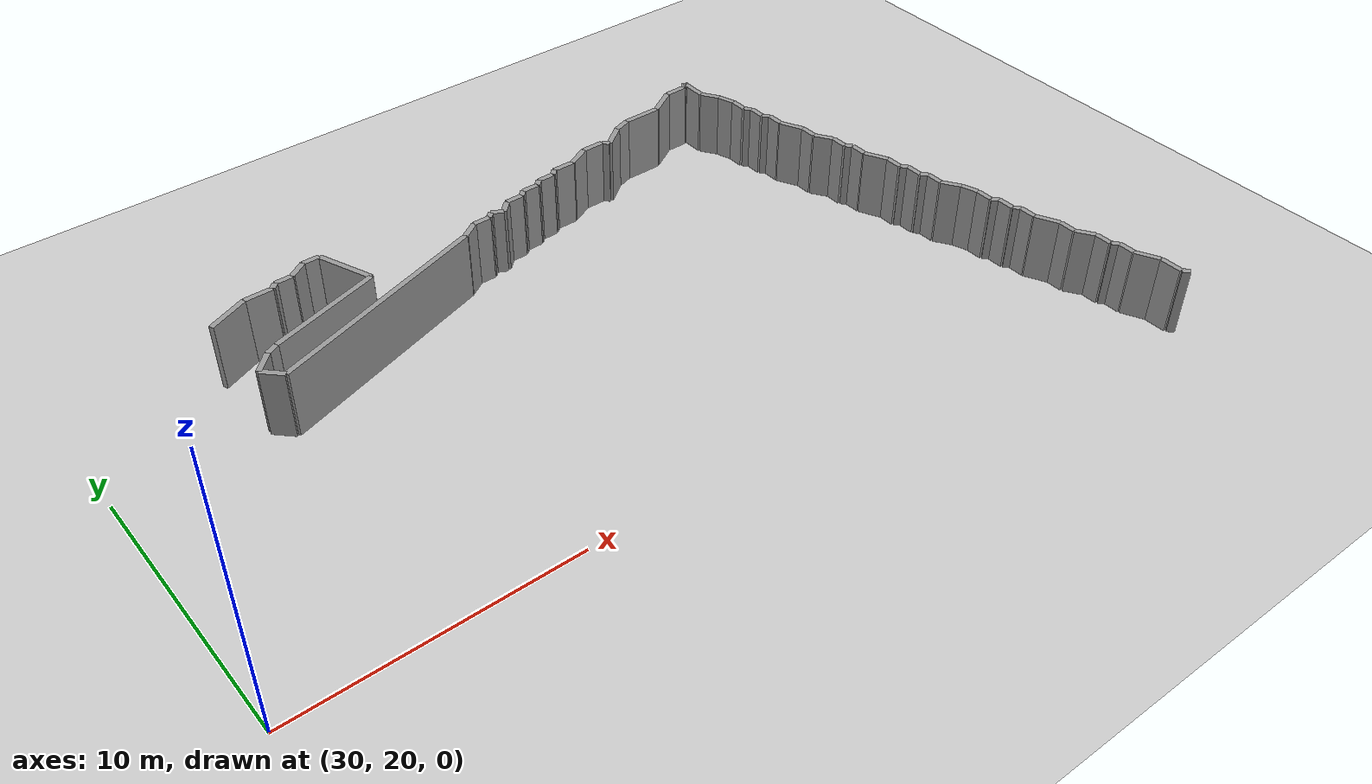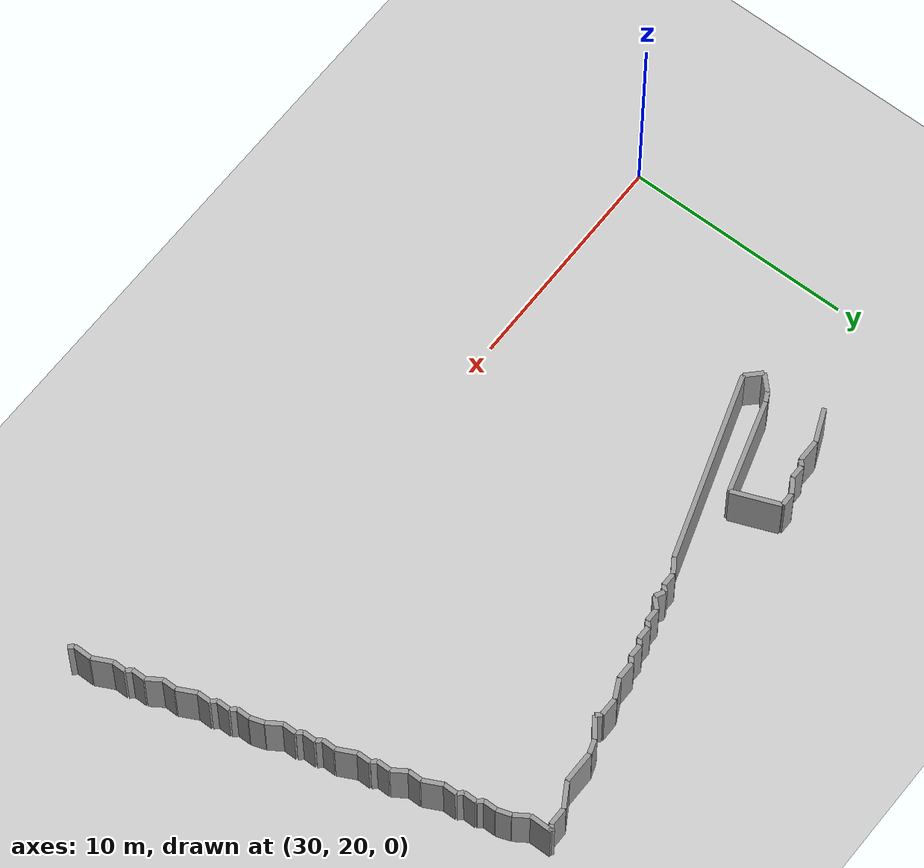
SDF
<sdf version="1.4">
 <world name="1_wall">
  <model name="ground_plane">
   <static>1</static>
   <link name="link">
    <collision name="collision">
     <geometry><plane><normal>0 0 1</normal><size>1000 1000</size></plane></geometry>
     <surface><friction><ode><mu>100</mu><mu2>50</mu2></ode></friction></surface>
    </collision>
    <visual name="visual">
     <cast_shadows>0</cast_shadows>
     <geometry><plane><normal>0 0 1</normal><size>10000 10000</size></plane></geometry>
     <material>
      <script><uri>file://media/materials/scripts/gazebo.material</uri><name>Gazebo/Grey</name></script>
     </material>
    </visual>
    <velocity_decay><linear>0</linear><angular>0</angular></velocity_decay>
   </link>
  </model>
  <model name="Wall_345">
   <static>1</static>
   <link name="Wall_345">
    <collision name="Wall_Collision_345">
     <geometry><box><size>1.52315462117 0.2 2.5</size></box></geometry>
     <pose>0 0 1.25 0 -0 0</pose>
    </collision>
    <visual name="Wall_Visual_345">
     <pose>0 0 1.25 0 -0 0</pose>
     <geometry><box><size>1.52315462117 0.2 2.5</size></box></geometry>
     <material>
      <script><uri>file://media/materials/scripts/gazebo.material</uri><name>Gazebo/Grey</name></script>
     </material>
    </visual>
    <velocity_decay><linear>0</linear><angular>0</angular></velocity_decay>
    <pose>35.7 33.1 0 0 0 0.404891786285</pose>
   </link>
  </model>
  <model name="Wall_346">
   <static>1</static>
   <link name="Wall_346">
    <collision name="Wall_Collision_346">
     <geometry><box><size>1.0 0.2 2.5</size></box></geometry>
     <pose>0 0 1.25 0 -0 0</pose>
    </collision>
    <visual name="Wall_Visual_346">
     <pose>0 0 1.25 0 -0 0</pose>
     <geometry><box><size>1.0 0.2 2.5</size></box></geometry>
     <material>
      <script><uri>file://media/materials/scripts/gazebo.material</uri><name>Gazebo/Grey</name></script>
     </material>
    </visual>
    <velocity_decay><linear>0</linear><angular>0</angular></velocity_decay>
    <pose>36.9 33.4 0 0 0 0.0</pose>
   </link>
  </model>
  <model name="Wall_347">
   <static>1</static>
   <link name="Wall_347">
    <collision name="Wall_Collision_347">
     <geometry><box><size>0.282842712475 0.2 2.5</size></box></geometry>
     <pose>0 0 1.25 0 -0 0</pose>
    </collision>
    <visual name="Wall_Visual_347">
     <pose>0 0 1.25 0 -0 0</pose>
     <geometry><box><size>0.282842712475 0.2 2.5</size></box></geometry>
     <material>
      <script><uri>file://media/materials/scripts/gazebo.material</uri><name>Gazebo/Grey</name></script>
     </material>
    </visual>
    <velocity_decay><linear>0</linear><angular>0</angular></velocity_decay>
    <pose>37.5 33.5 0 0 0 0.785398163397</pose>
   </link>
  </model>
  <model name="Wall_348">
   <static>1</static>
   <link name="Wall_348">
    <collision name="Wall_Collision_348">
     <geometry><box><size>0.6 0.2 2.5</size></box></geometry>
     <pose>0 0 1.25 0 -0 0</pose>
    </collision>
    <visual name="Wall_Visual_348">
     <pose>0 0 1.25 0 -0 0</pose>
     <geometry><box><size>0.6 0.2 2.5</size></box></geometry>
     <material>
      <script><uri>file://media/materials/scripts/gazebo.material</uri><name>Gazebo/Grey</name></script>
     </material>
    </visual>
    <velocity_decay><linear>0</linear><angular>0</angular></velocity_decay>
    <pose>37.9 33.6 0 0 0 0.0</pose>
   </link>
  </model>
  <model name="Wall_349">
   <static>1</static>
   <link name="Wall_349">
    <collision name="Wall_Collision_349">
     <geometry><box><size>0.721110255093 0.2 2.5</size></box></geometry>
     <pose>0 0 1.25 0 -0 0</pose>
    </collision>
    <visual name="Wall_Visual_349">
     <pose>0 0 1.25 0 -0 0</pose>
     <geometry><box><size>0.721110255093 0.2 2.5</size></box></geometry>
     <material>
      <script><uri>file://media/materials/scripts/gazebo.material</uri><name>Gazebo/Grey</name></script>
     </material>
    </visual>
    <velocity_decay><linear>0</linear><angular>0</angular></velocity_decay>
    <pose>38.5 33.8 0 0 0 0.588002603548</pose>
   </link>
  </model>
  <model name="Wall_350">
   <static>1</static>
   <link name="Wall_350">
    <collision name="Wall_Collision_350">
     <geometry><box><size>0.6 0.2 2.5</size></box></geometry>
     <pose>0 0 1.25 0 -0 0</pose>
    </collision>
    <visual name="Wall_Visual_350">
     <pose>0 0 1.25 0 -0 0</pose>
     <geometry><box><size>0.6 0.2 2.5</size></box></geometry>
     <material>
      <script><uri>file://media/materials/scripts/gazebo.material</uri><name>Gazebo/Grey</name></script>
     </material>
    </visual>
    <velocity_decay><linear>0</linear><angular>0</angular></velocity_decay>
    <pose>39.1 34.0 0 0 0 0.0</pose>
   </link>
  </model>
  <model name="Wall_351">
   <static>1</static>
   <link name="Wall_351">
    <collision name="Wall_Collision_351">
     <geometry><box><size>2.15406592285 0.2 2.5</size></box></geometry>
     <pose>0 0 1.25 0 -0 0</pose>
    </collision>
    <visual name="Wall_Visual_351">
     <pose>0 0 1.25 0 -0 0</pose>
     <geometry><box><size>2.15406592285 0.2 2.5</size></box></geometry>
     <material>
      <script><uri>file://media/materials/scripts/gazebo.material</uri><name>Gazebo/Grey</name></script>
     </material>
    </visual>
    <velocity_decay><linear>0</linear><angular>0</angular></velocity_decay>
    <pose>39.8 33.0 0 0 0 -1.19028994968</pose>
   </link>
  </model>
  <model name="Wall_352">
   <static>1</static>
   <link name="Wall_352">
    <collision name="Wall_Collision_352">
     <geometry><box><size>4.17612260356 0.2 2.5</size></box></geometry>
     <pose>0 0 1.25 0 -0 0</pose>
    </collision>
    <visual name="Wall_Visual_352">
     <pose>0 0 1.25 0 -0 0</pose>
     <geometry><box><size>4.17612260356 0.2 2.5</size></box></geometry>
     <material>
      <script><uri>file://media/materials/scripts/gazebo.material</uri><name>Gazebo/Grey</name></script>
     </material>
    </visual>
    <velocity_decay><linear>0</linear><angular>0</angular></velocity_decay>
    <pose>38.2 31.4 0 0 0 -2.85013585911</pose>
   </link>
  </model>
  <model name="Wall_353">
   <static>1</static>
   <link name="Wall_353">
    <collision name="Wall_Collision_353">
     <geometry><box><size>0.4472135955 0.2 2.5</size></box></geometry>
     <pose>0 0 1.25 0 -0 0</pose>
    </collision>
    <visual name="Wall_Visual_353">
     <pose>0 0 1.25 0 -0 0</pose>
     <geometry><box><size>0.4472135955 0.2 2.5</size></box></geometry>
     <material>
      <script><uri>file://media/materials/scripts/gazebo.material</uri><name>Gazebo/Grey</name></script>
     </material>
    </visual>
    <velocity_decay><linear>0</linear><angular>0</angular></velocity_decay>
    <pose>36.0 30.7 0 0 0 -2.67794504459</pose>
   </link>
  </model>
  <model name="Wall_354">
   <static>1</static>
   <link name="Wall_354">
    <collision name="Wall_Collision_354">
     <geometry><box><size>0.848528137424 0.2 2.5</size></box></geometry>
     <pose>0 0 1.25 0 -0 0</pose>
    </collision>
    <visual name="Wall_Visual_354">
     <pose>0 0 1.25 0 -0 0</pose>
     <geometry><box><size>0.848528137424 0.2 2.5</size></box></geometry>
     <material>
      <script><uri>file://media/materials/scripts/gazebo.material</uri><name>Gazebo/Grey</name></script>
     </material>
    </visual>
    <velocity_decay><linear>0</linear><angular>0</angular></velocity_decay>
    <pose>35.5 30.3 0 0 0 -2.35619449019</pose>
   </link>
  </model>
  <model name="Wall_355">
   <static>1</static>
   <link name="Wall_355">
    <collision name="Wall_Collision_355">
     <geometry><box><size>0.848528137424 0.2 2.5</size></box></geometry>
     <pose>0 0 1.25 0 -0 0</pose>
    </collision>
    <visual name="Wall_Visual_355">
     <pose>0 0 1.25 0 -0 0</pose>
     <geometry><box><size>0.848528137424 0.2 2.5</size></box></geometry>
     <material>
      <script><uri>file://media/materials/scripts/gazebo.material</uri><name>Gazebo/Grey</name></script>
     </material>
    </visual>
    <velocity_decay><linear>0</linear><angular>0</angular></velocity_decay>
    <pose>35.5 29.7 0 0 0 -0.785398163397</pose>
   </link>
  </model>
  <model name="Wall_356">
   <static>1</static>
   <link name="Wall_356">
    <collision name="Wall_Collision_356">
     <geometry><box><size>8.41189633793 0.2 2.5</size></box></geometry>
     <pose>0 0 1.25 0 -0 0</pose>
    </collision>
    <visual name="Wall_Visual_356">
     <pose>0 0 1.25 0 -0 0</pose>
     <geometry><box><size>8.41189633793 0.2 2.5</size></box></geometry>
     <material>
      <script><uri>file://media/materials/scripts/gazebo.material</uri><name>Gazebo/Grey</name></script>
     </material>
    </visual>
    <velocity_decay><linear>0</linear><angular>0</angular></velocity_decay>
    <pose>39.8 30.7 0 0 0 0.314231899084</pose>
   </link>
  </model>
  <model name="Wall_357">
   <static>1</static>
   <link name="Wall_357">
    <collision name="Wall_Collision_357">
     <geometry><box><size>0.721110255093 0.2 2.5</size></box></geometry>
     <pose>0 0 1.25 0 -0 0</pose>
    </collision>
    <visual name="Wall_Visual_357">
     <pose>0 0 1.25 0 -0 0</pose>
     <geometry><box><size>0.721110255093 0.2 2.5</size></box></geometry>
     <material>
      <script><uri>file://media/materials/scripts/gazebo.material</uri><name>Gazebo/Grey</name></script>
     </material>
    </visual>
    <velocity_decay><linear>0</linear><angular>0</angular></velocity_decay>
    <pose>44.1 32.2 0 0 0 0.588002603548</pose>
   </link>
  </model>
  <model name="Wall_358">
   <static>1</static>
   <link name="Wall_358">
    <collision name="Wall_Collision_358">
     <geometry><box><size>0.6 0.2 2.5</size></box></geometry>
     <pose>0 0 1.25 0 -0 0</pose>
    </collision>
    <visual name="Wall_Visual_358">
     <pose>0 0 1.25 0 -0 0</pose>
     <geometry><box><size>0.6 0.2 2.5</size></box></geometry>
     <material>
      <script><uri>file://media/materials/scripts/gazebo.material</uri><name>Gazebo/Grey</name></script>
     </material>
    </visual>
    <velocity_decay><linear>0</linear><angular>0</angular></velocity_decay>
    <pose>44.7 32.4 0 0 0 0.0</pose>
   </link>
  </model>
  <model name="Wall_359">
   <static>1</static>
   <link name="Wall_359">
    <collision name="Wall_Collision_359">
     <geometry><box><size>0.282842712475 0.2 2.5</size></box></geometry>
     <pose>0 0 1.25 0 -0 0</pose>
    </collision>
    <visual name="Wall_Visual_359">
     <pose>0 0 1.25 0 -0 0</pose>
     <geometry><box><size>0.282842712475 0.2 2.5</size></box></geometry>
     <material>
      <script><uri>file://media/materials/scripts/gazebo.material</uri><name>Gazebo/Grey</name></script>
     </material>
    </visual>
    <velocity_decay><linear>0</linear><angular>0</angular></velocity_decay>
    <pose>45.1 32.5 0 0 0 0.785398163397</pose>
   </link>
  </model>
  <model name="Wall_360">
   <static>1</static>
   <link name="Wall_360">
    <collision name="Wall_Collision_360">
     <geometry><box><size>0.4472135955 0.2 2.5</size></box></geometry>
     <pose>0 0 1.25 0 -0 0</pose>
    </collision>
    <visual name="Wall_Visual_360">
     <pose>0 0 1.25 0 -0 0</pose>
     <geometry><box><size>0.4472135955 0.2 2.5</size></box></geometry>
     <material>
      <script><uri>file://media/materials/scripts/gazebo.material</uri><name>Gazebo/Grey</name></script>
     </material>
    </visual>
    <velocity_decay><linear>0</linear><angular>0</angular></velocity_decay>
    <pose>45.4 32.5 0 0 0 -0.463647609001</pose>
   </link>
  </model>
  <model name="Wall_361">
   <static>1</static>
   <link name="Wall_361">
    <collision name="Wall_Collision_361">
     <geometry><box><size>0.565685424949 0.2 2.5</size></box></geometry>
     <pose>0 0 1.25 0 -0 0</pose>
    </collision>
    <visual name="Wall_Visual_361">
     <pose>0 0 1.25 0 -0 0</pose>
     <geometry><box><size>0.565685424949 0.2 2.5</size></box></geometry>
     <material>
      <script><uri>file://media/materials/scripts/gazebo.material</uri><name>Gazebo/Grey</name></script>
     </material>
    </visual>
    <velocity_decay><linear>0</linear><angular>0</angular></velocity_decay>
    <pose>45.8 32.6 0 0 0 0.785398163397</pose>
   </link>
  </model>
  <model name="Wall_362">
   <static>1</static>
   <link name="Wall_362">
    <collision name="Wall_Collision_362">
     <geometry><box><size>0.6 0.2 2.5</size></box></geometry>
     <pose>0 0 1.25 0 -0 0</pose>
    </collision>
    <visual name="Wall_Visual_362">
     <pose>0 0 1.25 0 -0 0</pose>
     <geometry><box><size>0.6 0.2 2.5</size></box></geometry>
     <material>
      <script><uri>file://media/materials/scripts/gazebo.material</uri><name>Gazebo/Grey</name></script>
     </material>
    </visual>
    <velocity_decay><linear>0</linear><angular>0</angular></velocity_decay>
    <pose>46.3 32.8 0 0 0 0.0</pose>
   </link>
  </model>
  <model name="Wall_363">
   <static>1</static>
   <link name="Wall_363">
    <collision name="Wall_Collision_363">
     <geometry><box><size>0.282842712475 0.2 2.5</size></box></geometry>
     <pose>0 0 1.25 0 -0 0</pose>
    </collision>
    <visual name="Wall_Visual_363">
     <pose>0 0 1.25 0 -0 0</pose>
     <geometry><box><size>0.282842712475 0.2 2.5</size></box></geometry>
     <material>
      <script><uri>file://media/materials/scripts/gazebo.material</uri><name>Gazebo/Grey</name></script>
     </material>
    </visual>
    <velocity_decay><linear>0</linear><angular>0</angular></velocity_decay>
    <pose>46.7 32.9 0 0 0 0.785398163397</pose>
   </link>
  </model>
  <model name="Wall_364">
   <static>1</static>
   <link name="Wall_364">
    <collision name="Wall_Collision_364">
     <geometry><box><size>0.6 0.2 2.5</size></box></geometry>
     <pose>0 0 1.25 0 -0 0</pose>
    </collision>
    <visual name="Wall_Visual_364">
     <pose>0 0 1.25 0 -0 0</pose>
     <geometry><box><size>0.6 0.2 2.5</size></box></geometry>
     <material>
      <script><uri>file://media/materials/scripts/gazebo.material</uri><name>Gazebo/Grey</name></script>
     </material>
    </visual>
    <velocity_decay><linear>0</linear><angular>0</angular></velocity_decay>
    <pose>47.1 33.0 0 0 0 0.0</pose>
   </link>
  </model>
  <model name="Wall_365">
   <static>1</static>
   <link name="Wall_365">
    <collision name="Wall_Collision_365">
     <geometry><box><size>0.282842712475 0.2 2.5</size></box></geometry>
     <pose>0 0 1.25 0 -0 0</pose>
    </collision>
    <visual name="Wall_Visual_365">
     <pose>0 0 1.25 0 -0 0</pose>
     <geometry><box><size>0.282842712475 0.2 2.5</size></box></geometry>
     <material>
      <script><uri>file://media/materials/scripts/gazebo.material</uri><name>Gazebo/Grey</name></script>
     </material>
    </visual>
    <velocity_decay><linear>0</linear><angular>0</angular></velocity_decay>
    <pose>47.5 33.1 0 0 0 0.785398163397</pose>
   </link>
  </model>
  <model name="Wall_366">
   <static>1</static>
   <link name="Wall_366">
    <collision name="Wall_Collision_366">
     <geometry><box><size>0.6 0.2 2.5</size></box></geometry>
     <pose>0 0 1.25 0 -0 0</pose>
    </collision>
    <visual name="Wall_Visual_366">
     <pose>0 0 1.25 0 -0 0</pose>
     <geometry><box><size>0.6 0.2 2.5</size></box></geometry>
     <material>
      <script><uri>file://media/materials/scripts/gazebo.material</uri><name>Gazebo/Grey</name></script>
     </material>
    </visual>
    <velocity_decay><linear>0</linear><angular>0</angular></velocity_decay>
    <pose>47.9 33.2 0 0 0 0.0</pose>
   </link>
  </model>
  <model name="Wall_367">
   <static>1</static>
   <link name="Wall_367">
    <collision name="Wall_Collision_367">
     <geometry><box><size>0.282842712475 0.2 2.5</size></box></geometry>
     <pose>0 0 1.25 0 -0 0</pose>
    </collision>
    <visual name="Wall_Visual_367">
     <pose>0 0 1.25 0 -0 0</pose>
     <geometry><box><size>0.282842712475 0.2 2.5</size></box></geometry>
     <material>
      <script><uri>file://media/materials/scripts/gazebo.material</uri><name>Gazebo/Grey</name></script>
     </material>
    </visual>
    <velocity_decay><linear>0</linear><angular>0</angular></velocity_decay>
    <pose>48.3 33.3 0 0 0 0.785398163397</pose>
   </link>
  </model>
  <model name="Wall_368">
   <static>1</static>
   <link name="Wall_368">
    <collision name="Wall_Collision_368">
     <geometry><box><size>0.8 0.2 2.5</size></box></geometry>
     <pose>0 0 1.25 0 -0 0</pose>
    </collision>
    <visual name="Wall_Visual_368">
     <pose>0 0 1.25 0 -0 0</pose>
     <geometry><box><size>0.8 0.2 2.5</size></box></geometry>
     <material>
      <script><uri>file://media/materials/scripts/gazebo.material</uri><name>Gazebo/Grey</name></script>
     </material>
    </visual>
    <velocity_decay><linear>0</linear><angular>0</angular></velocity_decay>
    <pose>48.8 33.4 0 0 0 0.0</pose>
   </link>
  </model>
  <model name="Wall_369">
   <static>1</static>
   <link name="Wall_369">
    <collision name="Wall_Collision_369">
     <geometry><box><size>0.894427191 0.2 2.5</size></box></geometry>
     <pose>0 0 1.25 0 -0 0</pose>
    </collision>
    <visual name="Wall_Visual_369">
     <pose>0 0 1.25 0 -0 0</pose>
     <geometry><box><size>0.894427191 0.2 2.5</size></box></geometry>
     <material>
      <script><uri>file://media/materials/scripts/gazebo.material</uri><name>Gazebo/Grey</name></script>
     </material>
    </visual>
    <velocity_decay><linear>0</linear><angular>0</angular></velocity_decay>
    <pose>49.6 33.6 0 0 0 0.463647609001</pose>
   </link>
  </model>
  <model name="Wall_370">
   <static>1</static>
   <link name="Wall_370">
    <collision name="Wall_Collision_370">
     <geometry><box><size>0.8 0.2 2.5</size></box></geometry>
     <pose>0 0 1.25 0 -0 0</pose>
    </collision>
    <visual name="Wall_Visual_370">
     <pose>0 0 1.25 0 -0 0</pose>
     <geometry><box><size>0.8 0.2 2.5</size></box></geometry>
     <material>
      <script><uri>file://media/materials/scripts/gazebo.material</uri><name>Gazebo/Grey</name></script>
     </material>
    </visual>
    <velocity_decay><linear>0</linear><angular>0</angular></velocity_decay>
    <pose>50.4 33.8 0 0 0 0.0</pose>
   </link>
  </model>
  <model name="Wall_371">
   <static>1</static>
   <link name="Wall_371">
    <collision name="Wall_Collision_371">
     <geometry><box><size>0.282842712475 0.2 2.5</size></box></geometry>
     <pose>0 0 1.25 0 -0 0</pose>
    </collision>
    <visual name="Wall_Visual_371">
     <pose>0 0 1.25 0 -0 0</pose>
     <geometry><box><size>0.282842712475 0.2 2.5</size></box></geometry>
     <material>
      <script><uri>file://media/materials/scripts/gazebo.material</uri><name>Gazebo/Grey</name></script>
     </material>
    </visual>
    <velocity_decay><linear>0</linear><angular>0</angular></velocity_decay>
    <pose>50.9 33.7 0 0 0 -0.785398163397</pose>
   </link>
  </model>
  <model name="Wall_372">
   <static>1</static>
   <link name="Wall_372">
    <collision name="Wall_Collision_372">
     <geometry><box><size>1.0 0.2 2.5</size></box></geometry>
     <pose>0 0 1.25 0 -0 0</pose>
    </collision>
    <visual name="Wall_Visual_372">
     <pose>0 0 1.25 0 -0 0</pose>
     <geometry><box><size>1.0 0.2 2.5</size></box></geometry>
     <material>
      <script><uri>file://media/materials/scripts/gazebo.material</uri><name>Gazebo/Grey</name></script>
     </material>
    </visual>
    <velocity_decay><linear>0</linear><angular>0</angular></velocity_decay>
    <pose>51.4 33.9 0 0 0 0.643501108793</pose>
   </link>
  </model>
  <model name="Wall_373">
   <static>1</static>
   <link name="Wall_373">
    <collision name="Wall_Collision_373">
     <geometry><box><size>0.632455532034 0.2 2.5</size></box></geometry>
     <pose>0 0 1.25 0 -0 0</pose>
    </collision>
    <visual name="Wall_Visual_373">
     <pose>0 0 1.25 0 -0 0</pose>
     <geometry><box><size>0.632455532034 0.2 2.5</size></box></geometry>
     <material>
      <script><uri>file://media/materials/scripts/gazebo.material</uri><name>Gazebo/Grey</name></script>
     </material>
    </visual>
    <velocity_decay><linear>0</linear><angular>0</angular></velocity_decay>
    <pose>52.1 34.3 0 0 0 0.321750554397</pose>
   </link>
  </model>
  <model name="Wall_374">
   <static>1</static>
   <link name="Wall_374">
    <collision name="Wall_Collision_374">
     <geometry><box><size>1.4 0.2 2.5</size></box></geometry>
     <pose>0 0 1.25 0 -0 0</pose>
    </collision>
    <visual name="Wall_Visual_374">
     <pose>0 0 1.25 0 -0 0</pose>
     <geometry><box><size>1.4 0.2 2.5</size></box></geometry>
     <material>
      <script><uri>file://media/materials/scripts/gazebo.material</uri><name>Gazebo/Grey</name></script>
     </material>
    </visual>
    <velocity_decay><linear>0</linear><angular>0</angular></velocity_decay>
    <pose>53.1 34.4 0 0 0 0.0</pose>
   </link>
  </model>
  <model name="Wall_375">
   <static>1</static>
   <link name="Wall_375">
    <collision name="Wall_Collision_375">
     <geometry><box><size>1.16619037897 0.2 2.5</size></box></geometry>
     <pose>0 0 1.25 0 -0 0</pose>
    </collision>
    <visual name="Wall_Visual_375">
     <pose>0 0 1.25 0 -0 0</pose>
     <geometry><box><size>1.16619037897 0.2 2.5</size></box></geometry>
     <material>
      <script><uri>file://media/materials/scripts/gazebo.material</uri><name>Gazebo/Grey</name></script>
     </material>
    </visual>
    <velocity_decay><linear>0</linear><angular>0</angular></velocity_decay>
    <pose>54.3 34.7 0 0 0 0.540419500271</pose>
   </link>
  </model>
  <model name="Wall_376">
   <static>1</static>
   <link name="Wall_376">
    <collision name="Wall_Collision_376">
     <geometry><box><size>0.8 0.2 2.5</size></box></geometry>
     <pose>0 0 1.25 0 -0 0</pose>
    </collision>
    <visual name="Wall_Visual_376">
     <pose>0 0 1.25 0 -0 0</pose>
     <geometry><box><size>0.8 0.2 2.5</size></box></geometry>
     <material>
      <script><uri>file://media/materials/scripts/gazebo.material</uri><name>Gazebo/Grey</name></script>
     </material>
    </visual>
    <velocity_decay><linear>0</linear><angular>0</angular></velocity_decay>
    <pose>55.2 35.0 0 0 0 0.0</pose>
   </link>
  </model>
  <model name="Wall_377">
   <static>1</static>
   <link name="Wall_377">
    <collision name="Wall_Collision_377">
     <geometry><box><size>0.282842712475 0.2 2.5</size></box></geometry>
     <pose>0 0 1.25 0 -0 0</pose>
    </collision>
    <visual name="Wall_Visual_377">
     <pose>0 0 1.25 0 -0 0</pose>
     <geometry><box><size>0.282842712475 0.2 2.5</size></box></geometry>
     <material>
      <script><uri>file://media/materials/scripts/gazebo.material</uri><name>Gazebo/Grey</name></script>
     </material>
    </visual>
    <velocity_decay><linear>0</linear><angular>0</angular></velocity_decay>
    <pose>55.7 35.1 0 0 0 0.785398163397</pose>
   </link>
  </model>
  <model name="Wall_378">
   <static>1</static>
   <link name="Wall_378">
    <collision name="Wall_Collision_378">
     <geometry><box><size>1.0 0.2 2.5</size></box></geometry>
     <pose>0 0 1.25 0 -0 0</pose>
    </collision>
    <visual name="Wall_Visual_378">
     <pose>0 0 1.25 0 -0 0</pose>
     <geometry><box><size>1.0 0.2 2.5</size></box></geometry>
     <material>
      <script><uri>file://media/materials/scripts/gazebo.material</uri><name>Gazebo/Grey</name></script>
     </material>
    </visual>
    <velocity_decay><linear>0</linear><angular>0</angular></velocity_decay>
    <pose>55.8 34.7 0 0 0 -1.57079632679</pose>
   </link>
  </model>
  <model name="Wall_379">
   <static>1</static>
   <link name="Wall_379">
    <collision name="Wall_Collision_379">
     <geometry><box><size>0.721110255093 0.2 2.5</size></box></geometry>
     <pose>0 0 1.25 0 -0 0</pose>
    </collision>
    <visual name="Wall_Visual_379">
     <pose>0 0 1.25 0 -0 0</pose>
     <geometry><box><size>0.721110255093 0.2 2.5</size></box></geometry>
     <material>
      <script><uri>file://media/materials/scripts/gazebo.material</uri><name>Gazebo/Grey</name></script>
     </material>
    </visual>
    <velocity_decay><linear>0</linear><angular>0</angular></velocity_decay>
    <pose>56.0 33.9 0 0 0 -0.982793723247</pose>
   </link>
  </model>
  <model name="Wall_380">
   <static>1</static>
   <link name="Wall_380">
    <collision name="Wall_Collision_380">
     <geometry><box><size>0.632455532034 0.2 2.5</size></box></geometry>
     <pose>0 0 1.25 0 -0 0</pose>
    </collision>
    <visual name="Wall_Visual_380">
     <pose>0 0 1.25 0 -0 0</pose>
     <geometry><box><size>0.632455532034 0.2 2.5</size></box></geometry>
     <material>
      <script><uri>file://media/materials/scripts/gazebo.material</uri><name>Gazebo/Grey</name></script>
     </material>
    </visual>
    <velocity_decay><linear>0</linear><angular>0</angular></velocity_decay>
    <pose>56.3 33.3 0 0 0 -1.2490457724</pose>
   </link>
  </model>
  <model name="Wall_381">
   <static>1</static>
   <link name="Wall_381">
    <collision name="Wall_Collision_381">
     <geometry><box><size>0.6 0.2 2.5</size></box></geometry>
     <pose>0 0 1.25 0 -0 0</pose>
    </collision>
    <visual name="Wall_Visual_381">
     <pose>0 0 1.25 0 -0 0</pose>
     <geometry><box><size>0.6 0.2 2.5</size></box></geometry>
     <material>
      <script><uri>file://media/materials/scripts/gazebo.material</uri><name>Gazebo/Grey</name></script>
     </material>
    </visual>
    <velocity_decay><linear>0</linear><angular>0</angular></velocity_decay>
    <pose>56.4 32.7 0 0 0 -1.57079632679</pose>
   </link>
  </model>
  <model name="Wall_382">
   <static>1</static>
   <link name="Wall_382">
    <collision name="Wall_Collision_382">
     <geometry><box><size>0.282842712475 0.2 2.5</size></box></geometry>
     <pose>0 0 1.25 0 -0 0</pose>
    </collision>
    <visual name="Wall_Visual_382">
     <pose>0 0 1.25 0 -0 0</pose>
     <geometry><box><size>0.282842712475 0.2 2.5</size></box></geometry>
     <material>
      <script><uri>file://media/materials/scripts/gazebo.material</uri><name>Gazebo/Grey</name></script>
     </material>
    </visual>
    <velocity_decay><linear>0</linear><angular>0</angular></velocity_decay>
    <pose>56.5 32.3 0 0 0 -0.785398163397</pose>
   </link>
  </model>
  <model name="Wall_383">
   <static>1</static>
   <link name="Wall_383">
    <collision name="Wall_Collision_383">
     <geometry><box><size>0.6 0.2 2.5</size></box></geometry>
     <pose>0 0 1.25 0 -0 0</pose>
    </collision>
    <visual name="Wall_Visual_383">
     <pose>0 0 1.25 0 -0 0</pose>
     <geometry><box><size>0.6 0.2 2.5</size></box></geometry>
     <material>
      <script><uri>file://media/materials/scripts/gazebo.material</uri><name>Gazebo/Grey</name></script>
     </material>
    </visual>
    <velocity_decay><linear>0</linear><angular>0</angular></velocity_decay>
    <pose>56.6 31.9 0 0 0 -1.57079632679</pose>
   </link>
  </model>
  <model name="Wall_384">
   <static>1</static>
   <link name="Wall_384">
    <collision name="Wall_Collision_384">
     <geometry><box><size>0.282842712475 0.2 2.5</size></box></geometry>
     <pose>0 0 1.25 0 -0 0</pose>
    </collision>
    <visual name="Wall_Visual_384">
     <pose>0 0 1.25 0 -0 0</pose>
     <geometry><box><size>0.282842712475 0.2 2.5</size></box></geometry>
     <material>
      <script><uri>file://media/materials/scripts/gazebo.material</uri><name>Gazebo/Grey</name></script>
     </material>
    </visual>
    <velocity_decay><linear>0</linear><angular>0</angular></velocity_decay>
    <pose>56.7 31.5 0 0 0 -0.785398163397</pose>
   </link>
  </model>
  <model name="Wall_385">
   <static>1</static>
   <link name="Wall_385">
    <collision name="Wall_Collision_385">
     <geometry><box><size>0.6 0.2 2.5</size></box></geometry>
     <pose>0 0 1.25 0 -0 0</pose>
    </collision>
    <visual name="Wall_Visual_385">
     <pose>0 0 1.25 0 -0 0</pose>
     <geometry><box><size>0.6 0.2 2.5</size></box></geometry>
     <material>
      <script><uri>file://media/materials/scripts/gazebo.material</uri><name>Gazebo/Grey</name></script>
     </material>
    </visual>
    <velocity_decay><linear>0</linear><angular>0</angular></velocity_decay>
    <pose>56.8 31.1 0 0 0 -1.57079632679</pose>
   </link>
  </model>
  <model name="Wall_386">
   <static>1</static>
   <link name="Wall_386">
    <collision name="Wall_Collision_386">
     <geometry><box><size>0.894427191 0.2 2.5</size></box></geometry>
     <pose>0 0 1.25 0 -0 0</pose>
    </collision>
    <visual name="Wall_Visual_386">
     <pose>0 0 1.25 0 -0 0</pose>
     <geometry><box><size>0.894427191 0.2 2.5</size></box></geometry>
     <material>
      <script><uri>file://media/materials/scripts/gazebo.material</uri><name>Gazebo/Grey</name></script>
     </material>
    </visual>
    <velocity_decay><linear>0</linear><angular>0</angular></velocity_decay>
    <pose>57.0 30.4 0 0 0 -1.10714871779</pose>
   </link>
  </model>
  <model name="Wall_387">
   <static>1</static>
   <link name="Wall_387">
    <collision name="Wall_Collision_387">
     <geometry><box><size>0.6 0.2 2.5</size></box></geometry>
     <pose>0 0 1.25 0 -0 0</pose>
    </collision>
    <visual name="Wall_Visual_387">
     <pose>0 0 1.25 0 -0 0</pose>
     <geometry><box><size>0.6 0.2 2.5</size></box></geometry>
     <material>
      <script><uri>file://media/materials/scripts/gazebo.material</uri><name>Gazebo/Grey</name></script>
     </material>
    </visual>
    <velocity_decay><linear>0</linear><angular>0</angular></velocity_decay>
    <pose>57.2 29.7 0 0 0 -1.57079632679</pose>
   </link>
  </model>
  <model name="Wall_388">
   <static>1</static>
   <link name="Wall_388">
    <collision name="Wall_Collision_388">
     <geometry><box><size>0.721110255093 0.2 2.5</size></box></geometry>
     <pose>0 0 1.25 0 -0 0</pose>
    </collision>
    <visual name="Wall_Visual_388">
     <pose>0 0 1.25 0 -0 0</pose>
     <geometry><box><size>0.721110255093 0.2 2.5</size></box></geometry>
     <material>
      <script><uri>file://media/materials/scripts/gazebo.material</uri><name>Gazebo/Grey</name></script>
     </material>
    </visual>
    <velocity_decay><linear>0</linear><angular>0</angular></velocity_decay>
    <pose>57.4 29.1 0 0 0 -0.982793723247</pose>
   </link>
  </model>
  <model name="Wall_389">
   <static>1</static>
   <link name="Wall_389">
    <collision name="Wall_Collision_389">
     <geometry><box><size>0.6 0.2 2.5</size></box></geometry>
     <pose>0 0 1.25 0 -0 0</pose>
    </collision>
    <visual name="Wall_Visual_389">
     <pose>0 0 1.25 0 -0 0</pose>
     <geometry><box><size>0.6 0.2 2.5</size></box></geometry>
     <material>
      <script><uri>file://media/materials/scripts/gazebo.material</uri><name>Gazebo/Grey</name></script>
     </material>
    </visual>
    <velocity_decay><linear>0</linear><angular>0</angular></velocity_decay>
    <pose>57.6 28.5 0 0 0 -1.57079632679</pose>
   </link>
  </model>
  <model name="Wall_390">
   <static>1</static>
   <link name="Wall_390">
    <collision name="Wall_Collision_390">
     <geometry><box><size>0.282842712475 0.2 2.5</size></box></geometry>
     <pose>0 0 1.25 0 -0 0</pose>
    </collision>
    <visual name="Wall_Visual_390">
     <pose>0 0 1.25 0 -0 0</pose>
     <geometry><box><size>0.282842712475 0.2 2.5</size></box></geometry>
     <material>
      <script><uri>file://media/materials/scripts/gazebo.material</uri><name>Gazebo/Grey</name></script>
     </material>
    </visual>
    <velocity_decay><linear>0</linear><angular>0</angular></velocity_decay>
    <pose>57.7 28.1 0 0 0 -0.785398163397</pose>
   </link>
  </model>
  <model name="Wall_391">
   <static>1</static>
   <link name="Wall_391">
    <collision name="Wall_Collision_391">
     <geometry><box><size>0.6 0.2 2.5</size></box></geometry>
     <pose>0 0 1.25 0 -0 0</pose>
    </collision>
    <visual name="Wall_Visual_391">
     <pose>0 0 1.25 0 -0 0</pose>
     <geometry><box><size>0.6 0.2 2.5</size></box></geometry>
     <material>
      <script><uri>file://media/materials/scripts/gazebo.material</uri><name>Gazebo/Grey</name></script>
     </material>
    </visual>
    <velocity_decay><linear>0</linear><angular>0</angular></velocity_decay>
    <pose>57.8 27.7 0 0 0 -1.57079632679</pose>
   </link>
  </model>
  <model name="Wall_392">
   <static>1</static>
   <link name="Wall_392">
    <collision name="Wall_Collision_392">
     <geometry><box><size>0.894427191 0.2 2.5</size></box></geometry>
     <pose>0 0 1.25 0 -0 0</pose>
    </collision>
    <visual name="Wall_Visual_392">
     <pose>0 0 1.25 0 -0 0</pose>
     <geometry><box><size>0.894427191 0.2 2.5</size></box></geometry>
     <material>
      <script><uri>file://media/materials/scripts/gazebo.material</uri><name>Gazebo/Grey</name></script>
     </material>
    </visual>
    <velocity_decay><linear>0</linear><angular>0</angular></velocity_decay>
    <pose>58.0 27.0 0 0 0 -1.10714871779</pose>
   </link>
  </model>
  <model name="Wall_393">
   <static>1</static>
   <link name="Wall_393">
    <collision name="Wall_Collision_393">
     <geometry><box><size>0.6 0.2 2.5</size></box></geometry>
     <pose>0 0 1.25 0 -0 0</pose>
    </collision>
    <visual name="Wall_Visual_393">
     <pose>0 0 1.25 0 -0 0</pose>
     <geometry><box><size>0.6 0.2 2.5</size></box></geometry>
     <material>
      <script><uri>file://media/materials/scripts/gazebo.material</uri><name>Gazebo/Grey</name></script>
     </material>
    </visual>
    <velocity_decay><linear>0</linear><angular>0</angular></velocity_decay>
    <pose>58.2 26.3 0 0 0 -1.57079632679</pose>
   </link>
  </model>
  <model name="Wall_394">
   <static>1</static>
   <link name="Wall_394">
    <collision name="Wall_Collision_394">
     <geometry><box><size>0.282842712475 0.2 2.5</size></box></geometry>
     <pose>0 0 1.25 0 -0 0</pose>
    </collision>
    <visual name="Wall_Visual_394">
     <pose>0 0 1.25 0 -0 0</pose>
     <geometry><box><size>0.282842712475 0.2 2.5</size></box></geometry>
     <material>
      <script><uri>file://media/materials/scripts/gazebo.material</uri><name>Gazebo/Grey</name></script>
     </material>
    </visual>
    <velocity_decay><linear>0</linear><angular>0</angular></velocity_decay>
    <pose>58.3 25.9 0 0 0 -0.785398163397</pose>
   </link>
  </model>
  <model name="Wall_395">
   <static>1</static>
   <link name="Wall_395">
    <collision name="Wall_Collision_395">
     <geometry><box><size>0.6 0.2 2.5</size></box></geometry>
     <pose>0 0 1.25 0 -0 0</pose>
    </collision>
    <visual name="Wall_Visual_395">
     <pose>0 0 1.25 0 -0 0</pose>
     <geometry><box><size>0.6 0.2 2.5</size></box></geometry>
     <material>
      <script><uri>file://media/materials/scripts/gazebo.material</uri><name>Gazebo/Grey</name></script>
     </material>
    </visual>
    <velocity_decay><linear>0</linear><angular>0</angular></velocity_decay>
    <pose>58.4 25.5 0 0 0 -1.57079632679</pose>
   </link>
  </model>
  <model name="Wall_396">
   <static>1</static>
   <link name="Wall_396">
    <collision name="Wall_Collision_396">
     <geometry><box><size>0.282842712475 0.2 2.5</size></box></geometry>
     <pose>0 0 1.25 0 -0 0</pose>
    </collision>
    <visual name="Wall_Visual_396">
     <pose>0 0 1.25 0 -0 0</pose>
     <geometry><box><size>0.282842712475 0.2 2.5</size></box></geometry>
     <material>
      <script><uri>file://media/materials/scripts/gazebo.material</uri><name>Gazebo/Grey</name></script>
     </material>
    </visual>
    <velocity_decay><linear>0</linear><angular>0</angular></velocity_decay>
    <pose>58.5 25.1 0 0 0 -0.785398163397</pose>
   </link>
  </model>
  <model name="Wall_397">
   <static>1</static>
   <link name="Wall_397">
    <collision name="Wall_Collision_397">
     <geometry><box><size>0.6 0.2 2.5</size></box></geometry>
     <pose>0 0 1.25 0 -0 0</pose>
    </collision>
    <visual name="Wall_Visual_397">
     <pose>0 0 1.25 0 -0 0</pose>
     <geometry><box><size>0.6 0.2 2.5</size></box></geometry>
     <material>
      <script><uri>file://media/materials/scripts/gazebo.material</uri><name>Gazebo/Grey</name></script>
     </material>
    </visual>
    <velocity_decay><linear>0</linear><angular>0</angular></velocity_decay>
    <pose>58.6 24.7 0 0 0 -1.57079632679</pose>
   </link>
  </model>
  <model name="Wall_398">
   <static>1</static>
   <link name="Wall_398">
    <collision name="Wall_Collision_398">
     <geometry><box><size>0.721110255093 0.2 2.5</size></box></geometry>
     <pose>0 0 1.25 0 -0 0</pose>
    </collision>
    <visual name="Wall_Visual_398">
     <pose>0 0 1.25 0 -0 0</pose>
     <geometry><box><size>0.721110255093 0.2 2.5</size></box></geometry>
     <material>
      <script><uri>file://media/materials/scripts/gazebo.material</uri><name>Gazebo/Grey</name></script>
     </material>
    </visual>
    <velocity_decay><linear>0</linear><angular>0</angular></velocity_decay>
    <pose>58.8 24.1 0 0 0 -0.982793723247</pose>
   </link>
  </model>
  <model name="Wall_399">
   <static>1</static>
   <link name="Wall_399">
    <collision name="Wall_Collision_399">
     <geometry><box><size>0.632455532034 0.2 2.5</size></box></geometry>
     <pose>0 0 1.25 0 -0 0</pose>
    </collision>
    <visual name="Wall_Visual_399">
     <pose>0 0 1.25 0 -0 0</pose>
     <geometry><box><size>0.632455532034 0.2 2.5</size></box></geometry>
     <material>
      <script><uri>file://media/materials/scripts/gazebo.material</uri><name>Gazebo/Grey</name></script>
     </material>
    </visual>
    <velocity_decay><linear>0</linear><angular>0</angular></velocity_decay>
    <pose>59.1 23.5 0 0 0 -1.2490457724</pose>
   </link>
  </model>
  <model name="Wall_400">
   <static>1</static>
   <link name="Wall_400">
    <collision name="Wall_Collision_400">
     <geometry><box><size>0.6 0.2 2.5</size></box></geometry>
     <pose>0 0 1.25 0 -0 0</pose>
    </collision>
    <visual name="Wall_Visual_400">
     <pose>0 0 1.25 0 -0 0</pose>
     <geometry><box><size>0.6 0.2 2.5</size></box></geometry>
     <material>
      <script><uri>file://media/materials/scripts/gazebo.material</uri><name>Gazebo/Grey</name></script>
     </material>
    </visual>
    <velocity_decay><linear>0</linear><angular>0</angular></velocity_decay>
    <pose>59.2 22.9 0 0 0 -1.57079632679</pose>
   </link>
  </model>
  <model name="Wall_401">
   <static>1</static>
   <link name="Wall_401">
    <collision name="Wall_Collision_401">
     <geometry><box><size>0.282842712475 0.2 2.5</size></box></geometry>
     <pose>0 0 1.25 0 -0 0</pose>
    </collision>
    <visual name="Wall_Visual_401">
     <pose>0 0 1.25 0 -0 0</pose>
     <geometry><box><size>0.282842712475 0.2 2.5</size></box></geometry>
     <material>
      <script><uri>file://media/materials/scripts/gazebo.material</uri><name>Gazebo/Grey</name></script>
     </material>
    </visual>
    <velocity_decay><linear>0</linear><angular>0</angular></velocity_decay>
    <pose>59.3 22.5 0 0 0 -0.785398163397</pose>
   </link>
  </model>
  <model name="Wall_402">
   <static>1</static>
   <link name="Wall_402">
    <collision name="Wall_Collision_402">
     <geometry><box><size>0.6 0.2 2.5</size></box></geometry>
     <pose>0 0 1.25 0 -0 0</pose>
    </collision>
    <visual name="Wall_Visual_402">
     <pose>0 0 1.25 0 -0 0</pose>
     <geometry><box><size>0.6 0.2 2.5</size></box></geometry>
     <material>
      <script><uri>file://media/materials/scripts/gazebo.material</uri><name>Gazebo/Grey</name></script>
     </material>
    </visual>
    <velocity_decay><linear>0</linear><angular>0</angular></velocity_decay>
    <pose>59.4 22.1 0 0 0 -1.57079632679</pose>
   </link>
  </model>
  <model name="Wall_403">
   <static>1</static>
   <link name="Wall_403">
    <collision name="Wall_Collision_403">
     <geometry><box><size>0.282842712475 0.2 2.5</size></box></geometry>
     <pose>0 0 1.25 0 -0 0</pose>
    </collision>
    <visual name="Wall_Visual_403">
     <pose>0 0 1.25 0 -0 0</pose>
     <geometry><box><size>0.282842712475 0.2 2.5</size></box></geometry>
     <material>
      <script><uri>file://media/materials/scripts/gazebo.material</uri><name>Gazebo/Grey</name></script>
     </material>
    </visual>
    <velocity_decay><linear>0</linear><angular>0</angular></velocity_decay>
    <pose>59.5 21.7 0 0 0 -0.785398163397</pose>
   </link>
  </model>
  <model name="Wall_404">
   <static>1</static>
   <link name="Wall_404">
    <collision name="Wall_Collision_404">
     <geometry><box><size>0.6 0.2 2.5</size></box></geometry>
     <pose>0 0 1.25 0 -0 0</pose>
    </collision>
    <visual name="Wall_Visual_404">
     <pose>0 0 1.25 0 -0 0</pose>
     <geometry><box><size>0.6 0.2 2.5</size></box></geometry>
     <material>
      <script><uri>file://media/materials/scripts/gazebo.material</uri><name>Gazebo/Grey</name></script>
     </material>
    </visual>
    <velocity_decay><linear>0</linear><angular>0</angular></velocity_decay>
    <pose>59.6 21.3 0 0 0 -1.57079632679</pose>
   </link>
  </model>
  <model name="Wall_405">
   <static>1</static>
   <link name="Wall_405">
    <collision name="Wall_Collision_405">
     <geometry><box><size>0.894427191 0.2 2.5</size></box></geometry>
     <pose>0 0 1.25 0 -0 0</pose>
    </collision>
    <visual name="Wall_Visual_405">
     <pose>0 0 1.25 0 -0 0</pose>
     <geometry><box><size>0.894427191 0.2 2.5</size></box></geometry>
     <material>
      <script><uri>file://media/materials/scripts/gazebo.material</uri><name>Gazebo/Grey</name></script>
     </material>
    </visual>
    <velocity_decay><linear>0</linear><angular>0</angular></velocity_decay>
    <pose>59.8 20.6 0 0 0 -1.10714871779</pose>
   </link>
  </model>
  <model name="Wall_406">
   <static>1</static>
   <link name="Wall_406">
    <collision name="Wall_Collision_406">
     <geometry><box><size>0.6 0.2 2.5</size></box></geometry>
     <pose>0 0 1.25 0 -0 0</pose>
    </collision>
    <visual name="Wall_Visual_406">
     <pose>0 0 1.25 0 -0 0</pose>
     <geometry><box><size>0.6 0.2 2.5</size></box></geometry>
     <material>
      <script><uri>file://media/materials/scripts/gazebo.material</uri><name>Gazebo/Grey</name></script>
     </material>
    </visual>
    <velocity_decay><linear>0</linear><angular>0</angular></velocity_decay>
    <pose>60.0 19.9 0 0 0 -1.57079632679</pose>
   </link>
  </model>
  <model name="Wall_407">
   <static>1</static>
   <link name="Wall_407">
    <collision name="Wall_Collision_407">
     <geometry><box><size>0.721110255093 0.2 2.5</size></box></geometry>
     <pose>0 0 1.25 0 -0 0</pose>
    </collision>
    <visual name="Wall_Visual_407">
     <pose>0 0 1.25 0 -0 0</pose>
     <geometry><box><size>0.721110255093 0.2 2.5</size></box></geometry>
     <material>
      <script><uri>file://media/materials/scripts/gazebo.material</uri><name>Gazebo/Grey</name></script>
     </material>
    </visual>
    <velocity_decay><linear>0</linear><angular>0</angular></velocity_decay>
    <pose>60.2 19.3 0 0 0 -0.982793723247</pose>
   </link>
  </model>
  <model name="Wall_408">
   <static>1</static>
   <link name="Wall_408">
    <collision name="Wall_Collision_408">
     <geometry><box><size>0.6 0.2 2.5</size></box></geometry>
     <pose>0 0 1.25 0 -0 0</pose>
    </collision>
    <visual name="Wall_Visual_408">
     <pose>0 0 1.25 0 -0 0</pose>
     <geometry><box><size>0.6 0.2 2.5</size></box></geometry>
     <material>
      <script><uri>file://media/materials/scripts/gazebo.material</uri><name>Gazebo/Grey</name></script>
     </material>
    </visual>
    <velocity_decay><linear>0</linear><angular>0</angular></velocity_decay>
    <pose>60.4 18.7 0 0 0 -1.57079632679</pose>
   </link>
  </model>
  <model name="Wall_409">
   <static>1</static>
   <link name="Wall_409">
    <collision name="Wall_Collision_409">
     <geometry><box><size>0.282842712475 0.2 2.5</size></box></geometry>
     <pose>0 0 1.25 0 -0 0</pose>
    </collision>
    <visual name="Wall_Visual_409">
     <pose>0 0 1.25 0 -0 0</pose>
     <geometry><box><size>0.282842712475 0.2 2.5</size></box></geometry>
     <material>
      <script><uri>file://media/materials/scripts/gazebo.material</uri><name>Gazebo/Grey</name></script>
     </material>
    </visual>
    <velocity_decay><linear>0</linear><angular>0</angular></velocity_decay>
    <pose>60.5 18.3 0 0 0 -0.785398163397</pose>
   </link>
  </model>
  <model name="Wall_410">
   <static>1</static>
   <link name="Wall_410">
    <collision name="Wall_Collision_410">
     <geometry><box><size>0.6 0.2 2.5</size></box></geometry>
     <pose>0 0 1.25 0 -0 0</pose>
    </collision>
    <visual name="Wall_Visual_410">
     <pose>0 0 1.25 0 -0 0</pose>
     <geometry><box><size>0.6 0.2 2.5</size></box></geometry>
     <material>
      <script><uri>file://media/materials/scripts/gazebo.material</uri><name>Gazebo/Grey</name></script>
     </material>
    </visual>
    <velocity_decay><linear>0</linear><angular>0</angular></velocity_decay>
    <pose>60.6 17.9 0 0 0 -1.57079632679</pose>
   </link>
  </model>
  <model name="Wall_411">
   <static>1</static>
   <link name="Wall_411">
    <collision name="Wall_Collision_411">
     <geometry><box><size>0.894427191 0.2 2.5</size></box></geometry>
     <pose>0 0 1.25 0 -0 0</pose>
    </collision>
    <visual name="Wall_Visual_411">
     <pose>0 0 1.25 0 -0 0</pose>
     <geometry><box><size>0.894427191 0.2 2.5</size></box></geometry>
     <material>
      <script><uri>file://media/materials/scripts/gazebo.material</uri><name>Gazebo/Grey</name></script>
     </material>
    </visual>
    <velocity_decay><linear>0</linear><angular>0</angular></velocity_decay>
    <pose>60.8 17.2 0 0 0 -1.10714871779</pose>
   </link>
  </model>
  <model name="Wall_412">
   <static>1</static>
   <link name="Wall_412">
    <collision name="Wall_Collision_412">
     <geometry><box><size>0.8 0.2 2.5</size></box></geometry>
     <pose>0 0 1.25 0 -0 0</pose>
    </collision>
    <visual name="Wall_Visual_412">
     <pose>0 0 1.25 0 -0 0</pose>
     <geometry><box><size>0.8 0.2 2.5</size></box></geometry>
     <material>
      <script><uri>file://media/materials/scripts/gazebo.material</uri><name>Gazebo/Grey</name></script>
     </material>
    </visual>
    <velocity_decay><linear>0</linear><angular>0</angular></velocity_decay>
    <pose>61.0 16.4 0 0 0 -1.57079632679</pose>
   </link>
  </model>
  <model name="Wall_413">
   <static>1</static>
   <link name="Wall_413">
    <collision name="Wall_Collision_413">
     <geometry><box><size>0.282842712475 0.2 2.5</size></box></geometry>
     <pose>0 0 1.25 0 -0 0</pose>
    </collision>
    <visual name="Wall_Visual_413">
     <pose>0 0 1.25 0 -0 0</pose>
     <geometry><box><size>0.282842712475 0.2 2.5</size></box></geometry>
     <material>
      <script><uri>file://media/materials/scripts/gazebo.material</uri><name>Gazebo/Grey</name></script>
     </material>
    </visual>
    <velocity_decay><linear>0</linear><angular>0</angular></velocity_decay>
    <pose>61.1 15.9 0 0 0 -0.785398163397</pose>
   </link>
  </model>
 </world>
</sdf>
